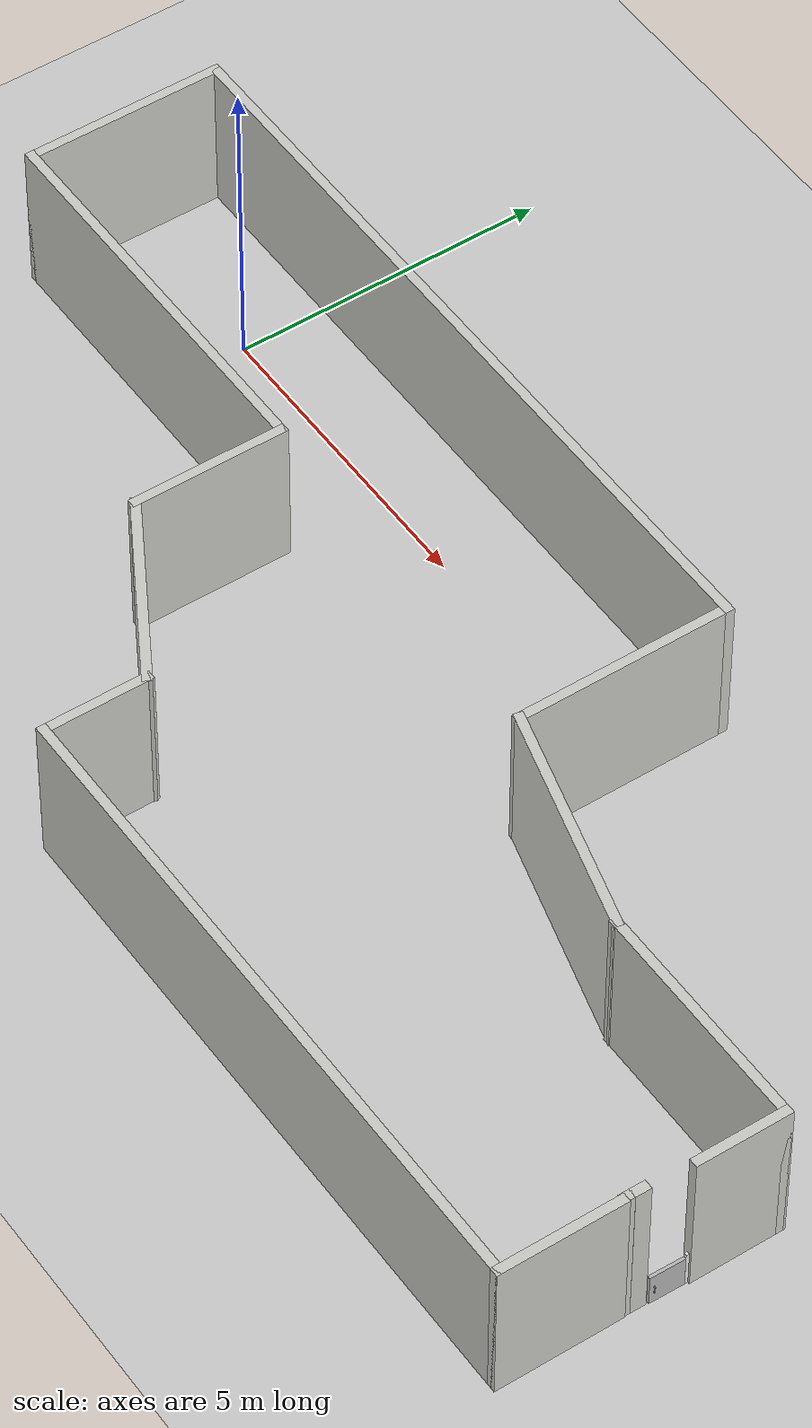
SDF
<sdf version="1.7">
 <world name="default">
  <plugin name="gazebo_occupancy_map" filename="libgazebo_2Dmap_plugin.so">
   <map_resolution>0.05</map_resolution>
   <map_height>0.132</map_height>
   <map_size_x>45</map_size_x>
   <map_size_y>45</map_size_y>
   <init_robot_x>-2.0</init_robot_x>
   <init_robot_y>-0.5</init_robot_y>
  </plugin>
  <light name="sun" type="directional">
   <pose>0 0 10 0 -0 0</pose>
   <diffuse>0.8 0.8 0.8 1</diffuse>
   <specular>0.2 0.2 0.2 1</specular>
   <attenuation>
    <range>1000</range>
    <constant>0.9</constant>
    <linear>0.01</linear>
    <quadratic>0.001</quadratic>
   </attenuation>
   <direction>-0.5 0.1 -0.9</direction>
   <spot><inner_angle>0</inner_angle><outer_angle>0</outer_angle><falloff>0</falloff></spot>
  </light>
  <model name="ground_plane">
   <static>1</static>
   <link name="link">
    <collision name="collision">
     <geometry><plane><normal>0 0 1</normal><size>100 100</size></plane></geometry>
     <surface>
      <contact><collide_bitmask>65535</collide_bitmask></contact>
      <friction><ode><mu>100</mu><mu2>50</mu2></ode></friction>
     </surface>
    </collision>
    <visual name="visual">
     <cast_shadows>0</cast_shadows>
     <geometry><plane><normal>0 0 1</normal><size>100 100</size></plane></geometry>
     <material>
      <script><uri>file://media/materials/scripts/gazebo.material</uri><name>Gazebo/Grey</name></script>
     </material>
    </visual>
   </link>
  </model>
  <gravity>0 0 -9.8</gravity>
  <magnetic_field>6e-06 2.3e-05 -4.2e-05</magnetic_field>
  <atmosphere type="adiabatic"/>
  <physics type="ode">
   <max_step_size>0.001</max_step_size>
   <real_time_factor>1</real_time_factor>
   <real_time_update_rate>1000</real_time_update_rate>
  </physics>
  <scene><ambient>0.4 0.4 0.4 1</ambient><background>0.7 0.7 0.7 1</background><shadows>1</shadows></scene>
  <spherical_coordinates>
   <surface_model>EARTH_WGS84</surface_model>
   <latitude_deg>0</latitude_deg>
   <longitude_deg>0</longitude_deg>
   <elevation>0</elevation>
   <heading_deg>0</heading_deg>
  </spherical_coordinates>
  <model name="z-shaped-room">
   <pose>6.87303 -2.86722 0 0 -0 0</pose>
   <link name="Wall_0">
    <collision name="Wall_0_Collision">
     <geometry><box><size>1.5 0.15 2.5</size></box></geometry>
     <pose>0 0 1.25 0 -0 0</pose>
    </collision>
    <visual name="Wall_0_Visual">
     <pose>0 0 1.25 0 -0 0</pose>
     <geometry><box><size>1.5 0.15 2.5</size></box></geometry>
     <material>
      <script><uri>file://media/materials/scripts/gazebo.material</uri><name>Gazebo/CeilingTiled</name></script>
      <ambient>1 1 1 1</ambient>
     </material>
     <meta><layer>0</layer></meta>
    </visual>
    <pose>9.71367 -0.656749 0 0 -0 1.5708</pose>
   </link>
   <link name="Wall_1">
    <collision name="Wall_1_Collision">
     <geometry><box><size>3.75 0.15 2.5</size></box></geometry>
     <pose>0 0 1.25 0 -0 0</pose>
    </collision>
    <visual name="Wall_1_Visual">
     <pose>0 0 1.25 0 -0 0</pose>
     <geometry><box><size>3.75 0.15 2.5</size></box></geometry>
     <material>
      <script><uri>file://media/materials/scripts/gazebo.material</uri><name>Gazebo/CeilingTiled</name></script>
      <ambient>1 1 1 1</ambient>
     </material>
     <meta><layer>0</layer></meta>
    </visual>
    <pose>7.91367 0.018251 0 0 -0 3.14159</pose>
   </link>
   <link name="Wall_10">
    <collision name="Wall_10_Collision">
     <geometry><box><size>10.5 0.15 2.5</size></box></geometry>
     <pose>0 0 1.25 0 -0 0</pose>
    </collision>
    <visual name="Wall_10_Visual">
     <pose>0 0 1.25 0 -0 0</pose>
     <geometry><box><size>10.5 0.15 2.5</size></box></geometry>
     <material>
      <script><uri>file://media/materials/scripts/gazebo.material</uri><name>Gazebo/CeilingTiled</name></script>
      <ambient>1 1 1 1</ambient>
     </material>
     <meta><layer>0</layer></meta>
    </visual>
    <pose>4.49601 -4.3 0 0 -0 0</pose>
   </link>
   <link name="Wall_11">
    <collision name="Wall_11_Collision">
     <geometry><box><size>2 0.15 2.5</size></box></geometry>
     <pose>0 0 1.25 0 -0 0</pose>
    </collision>
    <visual name="Wall_11_Visual">
     <pose>0 0 1.25 0 -0 0</pose>
     <geometry><box><size>2 0.15 2.5</size></box></geometry>
     <material>
      <script><uri>file://media/materials/scripts/gazebo.material</uri><name>Gazebo/CeilingTiled</name></script>
      <ambient>1 1 1 1</ambient>
     </material>
     <meta><layer>0</layer></meta>
    </visual>
    <pose>9.67101 -3.375 0 0 -0 1.5708</pose>
   </link>
   <link name="Wall_2">
    <collision name="Wall_2_Collision">
     <geometry><box><size>3.75 0.15 2.5</size></box></geometry>
     <pose>0 0 1.25 0 -0 0</pose>
    </collision>
    <visual name="Wall_2_Visual">
     <pose>0 0 1.25 0 -0 0</pose>
     <geometry><box><size>3.75 0.15 2.5</size></box></geometry>
     <material>
      <script><uri>file://media/materials/scripts/gazebo.material</uri><name>Gazebo/CeilingTiled</name></script>
      <ambient>1 1 1 1</ambient>
     </material>
     <meta><layer>0</layer></meta>
    </visual>
    <pose>4.375 0.484126 0 0 -0 2.87979</pose>
   </link>
   <link name="Wall_3">
    <collision name="Wall_3_Collision">
     <geometry><box><size>3.5 0.15 2.5</size></box></geometry>
     <pose>0 0 1.25 0 -0 0</pose>
    </collision>
    <visual name="Wall_3_Visual">
     <pose>0 0 1.25 0 -0 0</pose>
     <geometry><box><size>3.5 0.15 2.5</size></box></geometry>
     <material>
      <script><uri>file://media/materials/scripts/gazebo.material</uri><name>Gazebo/CeilingTiled</name></script>
      <ambient>1 1 1 1</ambient>
     </material>
     <meta><layer>0</layer></meta>
    </visual>
    <pose>2.63633 2.625 0 0 -0 1.5708</pose>
   </link>
   <link name="Wall_4">
    <collision name="Wall_4_Collision">
     <geometry><box><size>12.5 0.15 2.5</size></box></geometry>
     <pose>0 0 1.25 0 -0 0</pose>
    </collision>
    <visual name="Wall_4_Visual">
     <pose>0 0 1.25 0 -0 0</pose>
     <geometry><box><size>12.5 0.15 2.5</size></box></geometry>
     <material>
      <script><uri>file://media/materials/scripts/gazebo.material</uri><name>Gazebo/CeilingTiled</name></script>
      <ambient>1 1 1 1</ambient>
     </material>
     <meta><layer>0</layer></meta>
    </visual>
    <pose>-3.53867 4.3 0 0 -0 3.14159</pose>
   </link>
   <link name="Wall_5">
    <collision name="Wall_5_Collision">
     <geometry><box><size>3.25 0.15 2.5</size></box></geometry>
     <pose>0 0 1.25 0 -0 0</pose>
    </collision>
    <visual name="Wall_5_Visual">
     <pose>0 0 1.25 0 -0 0</pose>
     <geometry><box><size>3.25 0.15 2.5</size></box></geometry>
     <material>
      <script><uri>file://media/materials/scripts/gazebo.material</uri><name>Gazebo/CeilingTiled</name></script>
      <ambient>1 1 1 1</ambient>
     </material>
     <meta><layer>0</layer></meta>
    </visual>
    <pose>-9.71367 2.75 0 0 -0 -1.5708</pose>
   </link>
   <link name="Wall_6">
    <collision name="Wall_6_Collision">
     <geometry><box><size>6.5 0.15 2.5</size></box></geometry>
     <pose>0 0 1.25 0 -0 0</pose>
    </collision>
    <visual name="Wall_6_Visual">
     <pose>0 0 1.25 0 -0 0</pose>
     <geometry><box><size>6.5 0.15 2.5</size></box></geometry>
     <material>
      <script><uri>file://media/materials/scripts/gazebo.material</uri><name>Gazebo/CeilingTiled</name></script>
      <ambient>1 1 1 1</ambient>
     </material>
     <meta><layer>0</layer></meta>
    </visual>
    <pose>-6.53867 1.2 0 0 -0 0</pose>
   </link>
   <link name="Wall_7">
    <collision name="Wall_7_Collision">
     <geometry><box><size>2.5 0.15 2.5</size></box></geometry>
     <pose>0 0 1.25 0 -0 0</pose>
    </collision>
    <visual name="Wall_7_Visual">
     <pose>0 0 1.25 0 -0 0</pose>
     <geometry><box><size>2.5 0.15 2.5</size></box></geometry>
     <material>
      <script><uri>file://media/materials/scripts/gazebo.material</uri><name>Gazebo/CeilingTiled</name></script>
      <ambient>1 1 1 1</ambient>
     </material>
     <meta><layer>0</layer></meta>
    </visual>
    <pose>-3.36367 0.025 0 0 -0 -1.5708</pose>
   </link>
   <link name="Wall_8">
    <collision name="Wall_8_Collision">
     <geometry><box><size>3.25 0.15 2.5</size></box></geometry>
     <pose>0 0 1.25 0 -0 0</pose>
    </collision>
    <visual name="Wall_8_Visual">
     <pose>0 0 1.25 0 -0 0</pose>
     <geometry><box><size>3.25 0.15 2.5</size></box></geometry>
     <material>
      <script><uri>file://media/materials/scripts/gazebo.material</uri><name>Gazebo/CeilingTiled</name></script>
      <ambient>1 1 1 1</ambient>
     </material>
     <meta><layer>0</layer></meta>
    </visual>
    <pose>-2.02133 -1.925 0 0 -0 -0.523599</pose>
   </link>
   <link name="Wall_9">
    <collision name="Wall_9_Collision">
     <geometry><box><size>1.75 0.15 2.5</size></box></geometry>
     <pose>0 0 1.25 0 -0 0</pose>
    </collision>
    <visual name="Wall_9_Visual">
     <pose>0 0 1.25 0 -0 0</pose>
     <geometry><box><size>1.75 0.15 2.5</size></box></geometry>
     <material>
      <script><uri>file://media/materials/scripts/gazebo.material</uri><name>Gazebo/CeilingTiled</name></script>
      <ambient>1 1 1 1</ambient>
     </material>
     <meta><layer>0</layer></meta>
    </visual>
    <pose>-0.678988 -3.5 0 0 -0 -1.5708</pose>
   </link>
   <static>1</static>
  </model>
  <model name="door-model">
   <link name="door">
    <inertial>
     <mass>20</mass>
     <inertia>
      <ixx>4.53808</ixx>
      <ixy>0</ixy>
      <ixz>0</ixz>
      <iyy>4.54003</iyy>
      <iyz>0</iyz>
      <izz>0.0512722</izz>
     </inertia>
    </inertial>
    <gravity>0</gravity>
    <visual name="visual">
     <geometry><mesh><uri>model://door-model/./Door.dae</uri><scale>0.001 0.001 0.001</scale></mesh></geometry>
    </visual>
    <collision name="collision">
     <geometry><mesh><uri>model://door-model/./Door.dae</uri><scale>0.001 0.001 0.001</scale></mesh></geometry>
     <surface>
      <friction>
       <ode><mu>1</mu><mu2>1</mu2><fdir1>0 0 0</fdir1><slip1>0</slip1><slip2>0</slip2></ode>
       <torsional>
        <coefficient>1</coefficient>
        <patch_radius>0</patch_radius>
        <surface_radius>0</surface_radius>
        <use_patch_radius>1</use_patch_radius>
        <ode><slip>0</slip></ode>
       </torsional>
      </friction>
      <bounce><restitution_coefficient>0</restitution_coefficient><threshold>1e+06</threshold></bounce>
      <contact>
       <collide_without_contact>0</collide_without_contact>
       <collide_without_contact_bitmask>1</collide_without_contact_bitmask>
       <collide_bitmask>1</collide_bitmask>
       <ode>
        <soft_cfm>0</soft_cfm>
        <soft_erp>0.2</soft_erp>
        <kp>1e+13</kp>
        <kd>1</kd>
        <max_vel>0.01</max_vel>
        <min_depth>0</min_depth>
       </ode>
       <bullet>
        <split_impulse>1</split_impulse>
        <split_impulse_penetration_threshold>-0.01</split_impulse_penetration_threshold>
        <soft_cfm>0</soft_cfm>
        <soft_erp>0.2</soft_erp>
        <kp>1e+13</kp>
        <kd>1</kd>
       </bullet>
      </contact>
     </surface>
    </collision>
   </link>
   <link name="pole">
    <inertial>
     <mass>100</mass>
     <inertia>
      <ixx>0.001</ixx>
      <ixy>0.001</ixy>
      <ixz>0.001</ixz>
      <iyy>0.001</iyy>
      <iyz>0.001</iyz>
      <izz>0.001</izz>
     </inertia>
    </inertial>
    <pose>-0.02632 0 0.308096 0 -0 0</pose>
    <gravity>0</gravity>
    <kinematic>1</kinematic>
    <visual name="visual">
     <geometry><box><size>0.048276 0.0462 0.625074</size></box></geometry>
     <material>
      <lighting>1</lighting>
      <script><uri>file://media/materials/scripts/gazebo.material</uri><name>Gazebo/White</name></script>
      <ambient>1 1 1 1</ambient>
     </material>
    </visual>
    <collision name="collision">
     <geometry><box><size>0.048 0.046201 0.625074</size></box></geometry>
     <surface>
      <friction>
       <ode><mu>1</mu><mu2>1</mu2><fdir1>0 0 0</fdir1><slip1>0</slip1><slip2>0</slip2></ode>
       <torsional>
        <coefficient>1</coefficient>
        <patch_radius>0</patch_radius>
        <surface_radius>0</surface_radius>
        <use_patch_radius>1</use_patch_radius>
        <ode><slip>0</slip></ode>
       </torsional>
      </friction>
      <bounce><restitution_coefficient>0</restitution_coefficient><threshold>1e+06</threshold></bounce>
      <contact>
       <collide_without_contact>0</collide_without_contact>
       <collide_without_contact_bitmask>1</collide_without_contact_bitmask>
       <collide_bitmask>1</collide_bitmask>
       <ode>
        <soft_cfm>0</soft_cfm>
        <soft_erp>0.2</soft_erp>
        <kp>1e+13</kp>
        <kd>1</kd>
        <max_vel>0.01</max_vel>
        <min_depth>0</min_depth>
       </ode>
       <bullet>
        <split_impulse>1</split_impulse>
        <split_impulse_penetration_threshold>-0.01</split_impulse_penetration_threshold>
        <soft_cfm>0</soft_cfm>
        <soft_erp>0.2</soft_erp>
        <kp>1e+13</kp>
        <kd>1</kd>
       </bullet>
      </contact>
     </surface>
    </collision>
   </link>
   <joint name="hinge" type="revolute">
    <parent>pole</parent>
    <child>door</child>
    <pose>0 0 0.3 0 -0 0</pose>
    <axis>
     <xyz>0 0 1</xyz>
     <limit><lower>-1.74533</lower><upper>1.74533</upper><effort>3900</effort><velocity>0.62</velocity></limit>
     <dynamics>
      <spring_reference>0</spring_reference>
      <spring_stiffness>0</spring_stiffness>
      <damping>0.1</damping>
      <friction>0.1</friction>
     </dynamics>
    </axis>
    <physics>
     <ode><limit><cfm>0</cfm><erp>0.2</erp></limit><suspension><cfm>0</cfm><erp>0.2</erp></suspension></ode>
    </physics>
   </joint>
   <static>0</static>
   <pose>16.6071 -4.32719 0 -0 -0 -1.58894</pose>
  </model>
  <model name="gap-filler-tile">
   <pose>19.6296 -6.56921 0 0 0 -1.56547</pose>
   <link name="Wall_4">
    <collision name="Wall_4_Collision">
     <geometry><box><size>0.25 0.15 2.5</size></box></geometry>
     <pose>0 0 1.25 0 -0 0</pose>
    </collision>
    <visual name="Wall_4_Visual">
     <pose>0 0 1.25 0 -0 0</pose>
     <geometry><box><size>0.25 0.15 2.5</size></box></geometry>
     <material>
      <script><uri>file://media/materials/scripts/gazebo.material</uri><name>Gazebo/CeilingTiled</name></script>
      <ambient>1 1 1 1</ambient>
     </material>
     <meta><layer>0</layer></meta>
    </visual>
    <pose>-1.38938 -3.0906 0 0 -0 3.14159</pose>
   </link>
   <static>1</static>
  </model>
  <model name="gap-filler-tile_0">
   <pose>19.6154 -6.44321 0 0 0 -1.57713</pose>
   <link name="Wall_4">
    <collision name="Wall_4_Collision">
     <geometry><box><size>0.25 0.15 2.5</size></box></geometry>
     <pose>0 0 1.25 0 -0 0</pose>
    </collision>
    <visual name="Wall_4_Visual">
     <pose>0 0 1.25 0 -0 0</pose>
     <geometry><box><size>0.25 0.15 2.5</size></box></geometry>
     <material>
      <script><uri>file://media/materials/scripts/gazebo.material</uri><name>Gazebo/CeilingTiled</name></script>
      <ambient>1 1 1 1</ambient>
     </material>
     <meta><layer>0</layer></meta>
    </visual>
    <pose>-1.38938 -3.0906 0 0 -0 3.14159</pose>
   </link>
   <static>1</static>
  </model>
 </world>
</sdf>
